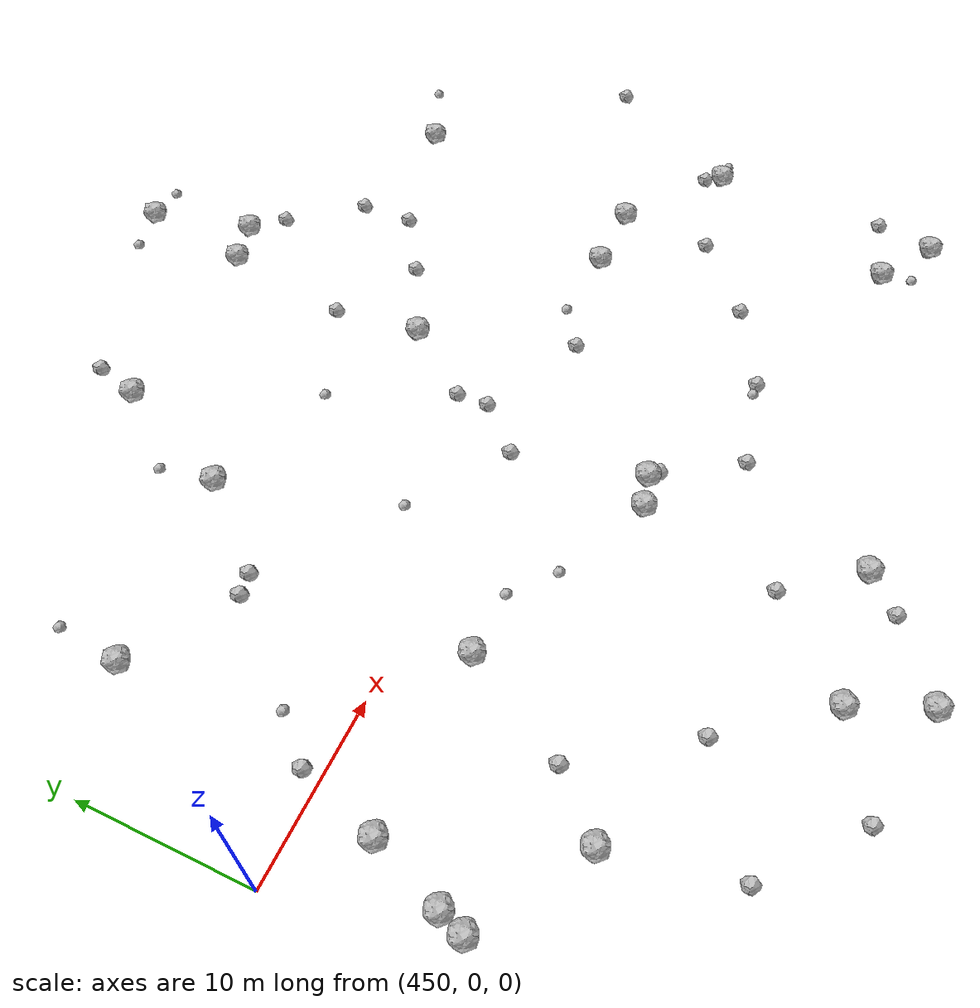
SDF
<sdf version="1.6">
 <world name="default">
  <include><uri>model://sun</uri></include>
  <model name="rock1_12_4">
   <include><uri>model://rock1</uri><pose>458.1211075331026 -13.005330775875603 0.5 0 0 0</pose></include>
  </model>
  <model name="rock1_12_5">
   <include><uri>model://rock1</uri><pose>456.6544536204833 12.238005553834881 0.5 0 0 0</pose></include>
  </model>
  <model name="rock1_12_6">
   <include><uri>model://rock1</uri><pose>482.79920794850636 21.998814599884952 0.5 0 0 0</pose></include>
  </model>
  <model name="rock1_12_7">
   <include><uri>model://rock1</uri><pose>496.5003529457706 1.14951934000646 0.5 0 0 0</pose></include>
  </model>
  <model name="rock1_12_8">
   <include><uri>model://rock1</uri><pose>482.13666049723054 8.802672082401358 0.5 0 0 0</pose></include>
  </model>
  <model name="rock1_12_9">
   <include><uri>model://rock1</uri><pose>485.3594399314389 22.712665360522287 0.5 0 0 0</pose></include>
  </model>
  <model name="rock1_12_10">
   <include><uri>model://rock1</uri><pose>476.18413915882513 -8.193744100596877 0.5 0 0 0</pose></include>
  </model>
  <model name="rock1_12_11">
   <include><uri>model://rock1</uri><pose>452.18916810415317 -9.284389814153446 0.5 0 0 0</pose></include>
  </model>
  <model name="rock1_12_12">
   <include><uri>model://rock1</uri><pose>477.30940294686775 -20.403599834726094 0.5 0 0 0</pose></include>
  </model>
  <model name="rock1_12_13">
   <include><uri>model://rock1</uri><pose>464.445435694954 -3.637671580568714 0.5 0 0 0</pose></include>
  </model>
  <model name="rock1_12_14">
   <include><uri>model://rock1</uri><pose>498.2674085399251 15.95179184451559 0.5 0 0 0</pose></include>
  </model>
  <model name="rock1_12_15">
   <include><uri>model://rock1</uri><pose>454.29803096089205 -3.6461477009884575 0.5 0 0 0</pose></include>
  </model>
  <model name="rock1_12_16">
   <include><uri>model://rock1</uri><pose>483.832737849522 28.915258420472504 0.5 0 0 0</pose></include>
  </model>
  <model name="rock1_12_17">
   <include><uri>model://rock1</uri><pose>467.84067045814896 13.908112984919718 0.5 0 0 0</pose></include>
  </model>
  <model name="rock1_12_18">
   <include><uri>model://rock1</uri><pose>478.0926582761693 -7.678695463811401 0.5 0 0 0</pose></include>
  </model>
  <model name="rock1_12_19">
   <include><uri>model://rock1</uri><pose>502.4667920111313 -3.339998357961754 0.5 0 0 0</pose></include>
  </model>
  <model name="rock1_12_20">
   <include><uri>model://rock1</uri><pose>471.0523495903334 21.589683974049457 0.5 0 0 0</pose></include>
  </model>
  <model name="rock1_12_21">
   <include><uri>model://rock1</uri><pose>492.1866435230895 1.1118974155681478 0.5 0 0 0</pose></include>
  </model>
  <model name="rock1_12_22">
   <include><uri>model://rock1</uri><pose>469.45327834985716 -21.293446278905183 0.5 0 0 0</pose></include>
  </model>
  <model name="rock1_12_23">
   <include><uri>model://rock1</uri><pose>501.7265449144703 -17.540805546116477 0.5 0 0 0</pose></include>
  </model>
  <model name="rock1_12_24">
   <include><uri>model://rock1</uri><pose>471.2463280123952 -25.47047503547975 0.5 0 0 0</pose></include>
  </model>
  <model name="rock1_12_25">
   <include><uri>model://rock1</uri><pose>498.2583981999603 -15.332011536277703 0.5 0 0 0</pose></include>
  </model>
  <model name="rock1_12_26">
   <include><uri>model://rock1</uri><pose>452.6925787910406 -7.83549326579282 0.5 0 0 0</pose></include>
  </model>
  <model name="rock2_12_0">
   <include><uri>model://rock2</uri><pose>490.18131633389055 13.7621935260414 0.3 0 0 0</pose></include>
  </model>
  <model name="rock2_12_1">
   <include><uri>model://rock2</uri><pose>460.966431943681 -9.89499485533706 0.3 0 0 0</pose></include>
  </model>
  <model name="rock2_12_2">
   <include><uri>model://rock2</uri><pose>465.18910171821733 -15.84949392841503 0.3 0 0 0</pose></include>
  </model>
  <model name="rock2_12_3">
   <include><uri>model://rock2</uri><pose>496.0634964403987 -4.500585679535341 0.3 0 0 0</pose></include>
  </model>
  <model name="rock2_12_4">
   <include><uri>model://rock2</uri><pose>459.44256452456193 -19.9611336995135 0.3 0 0 0</pose></include>
  </model>
  <model name="rock2_12_5">
   <include><uri>model://rock2</uri><pose>455.70969968909264 1.0547193202317544 0.3 0 0 0</pose></include>
  </model>
  <model name="rock2_12_6">
   <include><uri>model://rock2</uri><pose>462.35143830147285 8.799101859809618 0.3 0 0 0</pose></include>
  </model>
  <model name="rock2_12_7">
   <include><uri>model://rock2</uri><pose>471.72070618799387 24.407805690486974 0.3 0 0 0</pose></include>
  </model>
  <model name="rock2_12_8">
   <include><uri>model://rock2</uri><pose>501.7512605716585 -2.3853957565239945 0.3 0 0 0</pose></include>
  </model>
  <model name="rock2_12_9">
   <include><uri>model://rock2</uri><pose>475.3471817745757 -22.392260117829586 0.3 0 0 0</pose></include>
  </model>
  <model name="rock2_12_10">
   <include><uri>model://rock2</uri><pose>486.6719886438008 -11.057423145823982 0.3 0 0 0</pose></include>
  </model>
  <model name="rock2_12_11">
   <include><uri>model://rock2</uri><pose>464.3121382770366 -24.18336369097204 0.3 0 0 0</pose></include>
  </model>
  <model name="rock2_12_12">
   <include><uri>model://rock2</uri><pose>486.5300811545278 11.307901877283847 0.3 0 0 0</pose></include>
  </model>
  <model name="rock2_12_13">
   <include><uri>model://rock2</uri><pose>484.99878738576126 -0.31516153186613494 0.3 0 0 0</pose></include>
  </model>
  <model name="rock2_12_14">
   <include><uri>model://rock2</uri><pose>490.12903950966023 16.992236406907807 0.3 0 0 0</pose></include>
  </model>
  <model name="rock2_12_15">
   <include><uri>model://rock2</uri><pose>474.13677522476604 -16.349904243823126 0.3 0 0 0</pose></include>
  </model>
  <model name="rock2_12_16">
   <include><uri>model://rock2</uri><pose>481.1771386552491 -12.341315878266265 0.3 0 0 0</pose></include>
  </model>
  <model name="rock2_12_17">
   <include><uri>model://rock2</uri><pose>491.6432909463858 -8.343997507961951 0.3 0 0 0</pose></include>
  </model>
  <model name="rock2_12_18">
   <include><uri>model://rock2</uri><pose>478.76654783749814 4.4818440545945535 0.3 0 0 0</pose></include>
  </model>
  <model name="rock2_12_19">
   <include><uri>model://rock2</uri><pose>502.3625593580049 -14.0561537045574 0.3 0 0 0</pose></include>
  </model>
  <model name="rock2_12_20">
   <include><uri>model://rock2</uri><pose>476.31615577619726 -0.08330892050773286 0.3 0 0 0</pose></include>
  </model>
  <model name="rock2_12_21">
   <include><uri>model://rock2</uri><pose>486.91262036689045 21.029487537562034 0.3 0 0 0</pose></include>
  </model>
  <model name="rock2_12_22">
   <include><uri>model://rock2</uri><pose>463.6308286959331 9.049131560783884 0.3 0 0 0</pose></include>
  </model>
  <model name="rock2_12_23">
   <include><uri>model://rock2</uri><pose>507.5208225679162 5.626025945381315 0.3 0 0 0</pose></include>
  </model>
  <model name="rock2_12_24">
   <include><uri>model://rock2</uri><pose>478.8102010821877 2.5705039018091043 0.3 0 0 0</pose></include>
  </model>
  <model name="rock2_12_25">
   <include><uri>model://rock2</uri><pose>478.552533638142 -8.13860528362962 0.3 0 0 0</pose></include>
  </model>
  <model name="rock2_12_26">
   <include><uri>model://rock2</uri><pose>481.44963960285907 14.094413572727134 0.3 0 0 0</pose></include>
  </model>
  <model name="rock3_12_0">
   <include><uri>model://rock3</uri><pose>498.58930842921643 -17.20990486361783 0.2 0 0 0</pose></include>
  </model>
  <model name="rock3_12_1">
   <include><uri>model://rock3</uri><pose>467.22443588362944 17.146304889762924 0.2 0 0 0</pose></include>
  </model>
  <model name="rock3_12_2">
   <include><uri>model://rock3</uri><pose>470.7687995413622 3.6305078265558777 0.2 0 0 0</pose></include>
  </model>
  <model name="rock3_12_3">
   <include><uri>model://rock3</uri><pose>468.1531262936239 -3.726394612826571 0.2 0 0 0</pose></include>
  </model>
  <model name="rock3_12_4">
   <include><uri>model://rock3</uri><pose>502.3124970112451 17.79070813990635 0.2 0 0 0</pose></include>
  </model>
  <model name="rock3_12_5">
   <include><uri>model://rock3</uri><pose>456.9586499916054 16.08510468270351 0.2 0 0 0</pose></include>
  </model>
  <model name="rock3_12_6">
   <include><uri>model://rock3</uri><pose>487.44764839682887 1.3462944809413777 0.2 0 0 0</pose></include>
  </model>
  <model name="rock3_12_7">
   <include><uri>model://rock3</uri><pose>475.57275856252676 11.435701763444769 0.2 0 0 0</pose></include>
  </model>
  <model name="rock3_12_8">
   <include><uri>model://rock3</uri><pose>457.83089573043304 3.3905620931197404 0.2 0 0 0</pose></include>
  </model>
  <model name="rock3_12_9">
   <include><uri>model://rock3</uri><pose>485.94691754886446 -11.117097330584645 0.2 0 0 0</pose></include>
  </model>
  <model name="rock3_12_10">
   <include><uri>model://rock3</uri><pose>503.6321752139515 -3.4040469904480837 0.2 0 0 0</pose></include>
  </model>
  <model name="rock3_12_11">
   <include><uri>model://rock3</uri><pose>470.49061000078433 -5.701603418462568 0.2 0 0 0</pose></include>
  </model>
  <model name="rock3_12_12">
   <include><uri>model://rock3</uri><pose>486.0022176739693 28.86640990761361 0.2 0 0 0</pose></include>
  </model>
  <model name="rock3_12_13">
   <include><uri>model://rock3</uri><pose>481.09206803675494 28.379301249559852 0.2 0 0 0</pose></include>
  </model>
 </world>
</sdf>
